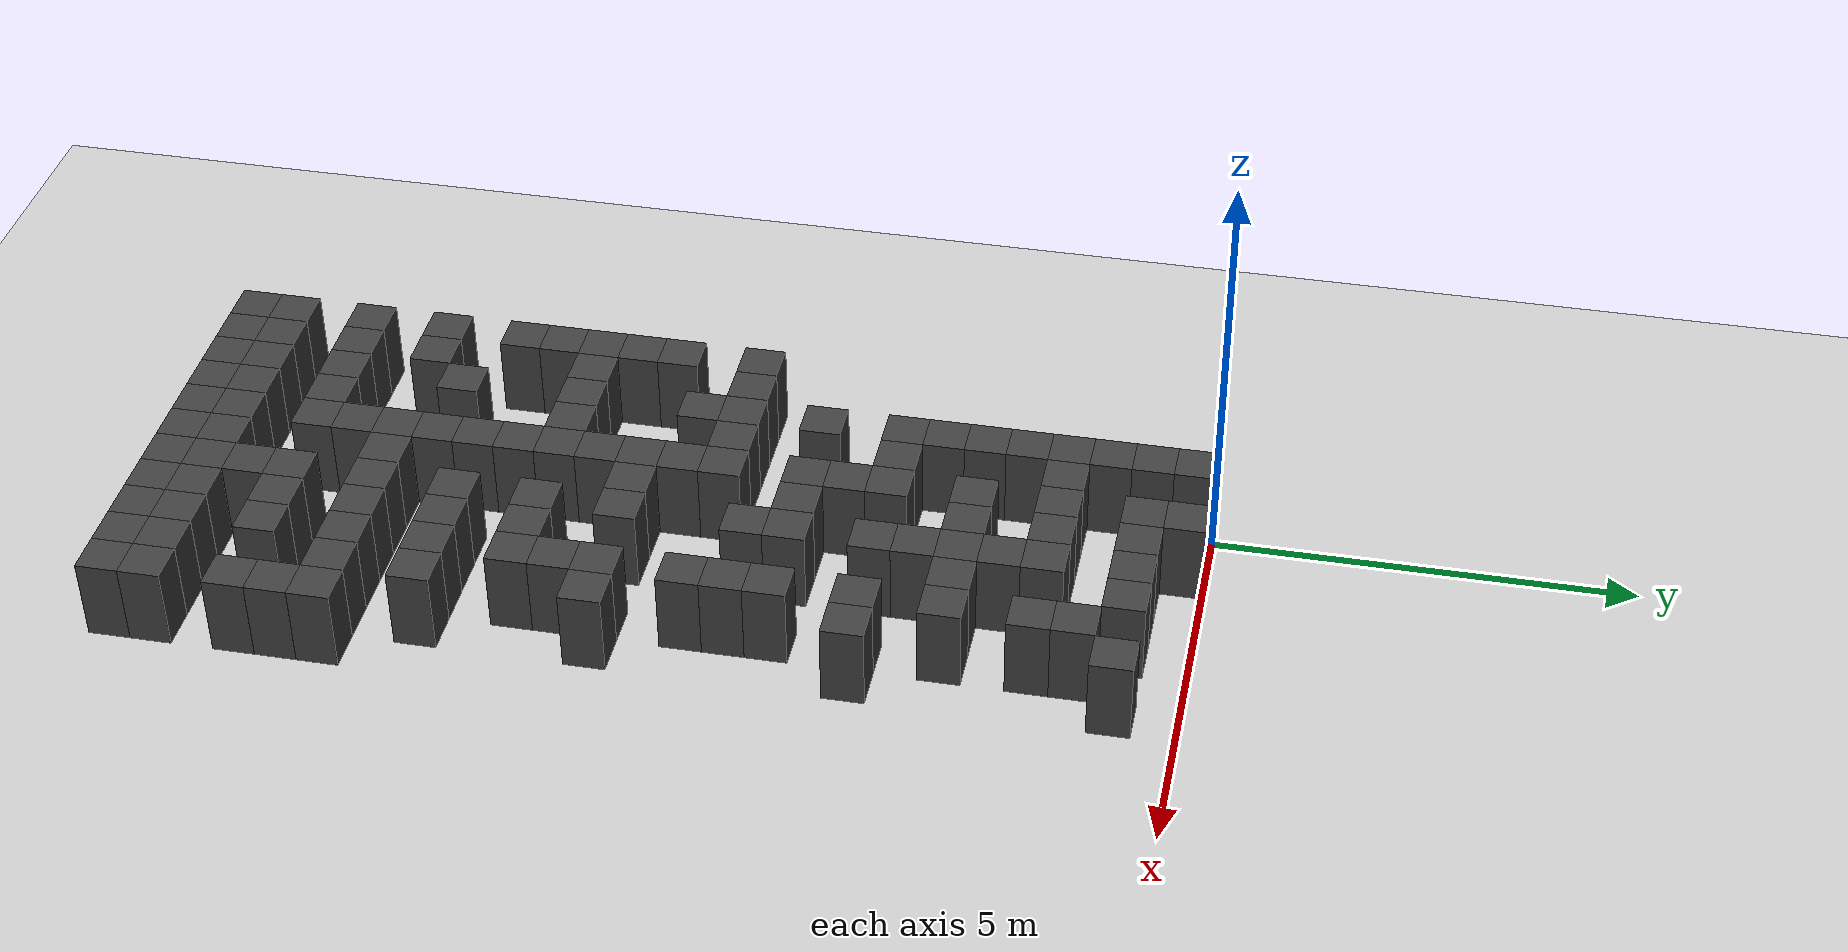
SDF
<sdf version="1.7">
 <world name="map_18347">
  <model name="ground_plane">
   <static>true</static>
   <link name="link">
    <collision name="collision">
     <geometry><plane><normal>0 0 1</normal><size>200 200</size></plane></geometry>
    </collision>
    <visual name="visual">
     <geometry><plane><normal>0 0 1</normal><size>200 200</size></plane></geometry>
     <material><ambient>0.8 0.8 0.8 1</ambient><diffuse>0.8 0.8 0.8 1</diffuse></material>
    </visual>
   </link>
  </model>
  <model name="maze_environment">
   <static>true</static>
   <link name="wall_651">
    <pose>-0.250 -0.250 0.500 0 0 0</pose>
    <collision name="col"><geometry><box><size>0.5 0.5 1.0</size></box></geometry></collision>
    <visual name="vis">
     <geometry><box><size>0.5 0.5 1.0</size></box></geometry>
     <material><ambient>0.15 0.15 0.15 1</ambient><diffuse>0.25 0.25 0.25 1</diffuse></material>
    </visual>
   </link>
   <link name="wall_652">
    <pose>0.750 -0.250 0.500 0 0 0</pose>
    <collision name="col"><geometry><box><size>0.5 0.5 1.0</size></box></geometry></collision>
    <visual name="vis">
     <geometry><box><size>0.5 0.5 1.0</size></box></geometry>
     <material><ambient>0.15 0.15 0.15 1</ambient><diffuse>0.25 0.25 0.25 1</diffuse></material>
    </visual>
   </link>
   <link name="wall_675">
    <pose>-0.250 -0.750 0.500 0 0 0</pose>
    <collision name="col"><geometry><box><size>0.5 0.5 1.0</size></box></geometry></collision>
    <visual name="vis">
     <geometry><box><size>0.5 0.5 1.0</size></box></geometry>
     <material><ambient>0.15 0.15 0.15 1</ambient><diffuse>0.25 0.25 0.25 1</diffuse></material>
    </visual>
   </link>
   <link name="wall_676">
    <pose>0.750 -0.750 0.500 0 0 0</pose>
    <collision name="col"><geometry><box><size>0.5 0.5 1.0</size></box></geometry></collision>
    <visual name="vis">
     <geometry><box><size>0.5 0.5 1.0</size></box></geometry>
     <material><ambient>0.15 0.15 0.15 1</ambient><diffuse>0.25 0.25 0.25 1</diffuse></material>
    </visual>
   </link>
   <link name="wall_677">
    <pose>1.250 -0.750 0.500 0 0 0</pose>
    <collision name="col"><geometry><box><size>0.5 0.5 1.0</size></box></geometry></collision>
    <visual name="vis">
     <geometry><box><size>0.5 0.5 1.0</size></box></geometry>
     <material><ambient>0.15 0.15 0.15 1</ambient><diffuse>0.25 0.25 0.25 1</diffuse></material>
    </visual>
   </link>
   <link name="wall_678">
    <pose>1.750 -0.750 0.500 0 0 0</pose>
    <collision name="col"><geometry><box><size>0.5 0.5 1.0</size></box></geometry></collision>
    <visual name="vis">
     <geometry><box><size>0.5 0.5 1.0</size></box></geometry>
     <material><ambient>0.15 0.15 0.15 1</ambient><diffuse>0.25 0.25 0.25 1</diffuse></material>
    </visual>
   </link>
   <link name="wall_679">
    <pose>2.250 -0.750 0.500 0 0 0</pose>
    <collision name="col"><geometry><box><size>0.5 0.5 1.0</size></box></geometry></collision>
    <visual name="vis">
     <geometry><box><size>0.5 0.5 1.0</size></box></geometry>
     <material><ambient>0.15 0.15 0.15 1</ambient><diffuse>0.25 0.25 0.25 1</diffuse></material>
    </visual>
   </link>
   <link name="wall_680">
    <pose>3.250 -0.750 0.500 0 0 0</pose>
    <collision name="col"><geometry><box><size>0.5 0.5 1.0</size></box></geometry></collision>
    <visual name="vis">
     <geometry><box><size>0.5 0.5 1.0</size></box></geometry>
     <material><ambient>0.15 0.15 0.15 1</ambient><diffuse>0.25 0.25 0.25 1</diffuse></material>
    </visual>
   </link>
   <link name="wall_701">
    <pose>-0.250 -1.250 0.500 0 0 0</pose>
    <collision name="col"><geometry><box><size>0.5 0.5 1.0</size></box></geometry></collision>
    <visual name="vis">
     <geometry><box><size>0.5 0.5 1.0</size></box></geometry>
     <material><ambient>0.15 0.15 0.15 1</ambient><diffuse>0.25 0.25 0.25 1</diffuse></material>
    </visual>
   </link>
   <link name="wall_702">
    <pose>2.750 -1.250 0.500 0 0 0</pose>
    <collision name="col"><geometry><box><size>0.5 0.5 1.0</size></box></geometry></collision>
    <visual name="vis">
     <geometry><box><size>0.5 0.5 1.0</size></box></geometry>
     <material><ambient>0.15 0.15 0.15 1</ambient><diffuse>0.25 0.25 0.25 1</diffuse></material>
    </visual>
   </link>
   <link name="wall_725">
    <pose>-0.250 -1.750 0.500 0 0 0</pose>
    <collision name="col"><geometry><box><size>0.5 0.5 1.0</size></box></geometry></collision>
    <visual name="vis">
     <geometry><box><size>0.5 0.5 1.0</size></box></geometry>
     <material><ambient>0.15 0.15 0.15 1</ambient><diffuse>0.25 0.25 0.25 1</diffuse></material>
    </visual>
   </link>
   <link name="wall_726">
    <pose>0.250 -1.750 0.500 0 0 0</pose>
    <collision name="col"><geometry><box><size>0.5 0.5 1.0</size></box></geometry></collision>
    <visual name="vis">
     <geometry><box><size>0.5 0.5 1.0</size></box></geometry>
     <material><ambient>0.15 0.15 0.15 1</ambient><diffuse>0.25 0.25 0.25 1</diffuse></material>
    </visual>
   </link>
   <link name="wall_727">
    <pose>0.750 -1.750 0.500 0 0 0</pose>
    <collision name="col"><geometry><box><size>0.5 0.5 1.0</size></box></geometry></collision>
    <visual name="vis">
     <geometry><box><size>0.5 0.5 1.0</size></box></geometry>
     <material><ambient>0.15 0.15 0.15 1</ambient><diffuse>0.25 0.25 0.25 1</diffuse></material>
    </visual>
   </link>
   <link name="wall_728">
    <pose>1.250 -1.750 0.500 0 0 0</pose>
    <collision name="col"><geometry><box><size>0.5 0.5 1.0</size></box></geometry></collision>
    <visual name="vis">
     <geometry><box><size>0.5 0.5 1.0</size></box></geometry>
     <material><ambient>0.15 0.15 0.15 1</ambient><diffuse>0.25 0.25 0.25 1</diffuse></material>
    </visual>
   </link>
   <link name="wall_729">
    <pose>1.750 -1.750 0.500 0 0 0</pose>
    <collision name="col"><geometry><box><size>0.5 0.5 1.0</size></box></geometry></collision>
    <visual name="vis">
     <geometry><box><size>0.5 0.5 1.0</size></box></geometry>
     <material><ambient>0.15 0.15 0.15 1</ambient><diffuse>0.25 0.25 0.25 1</diffuse></material>
    </visual>
   </link>
   <link name="wall_730">
    <pose>2.750 -1.750 0.500 0 0 0</pose>
    <collision name="col"><geometry><box><size>0.5 0.5 1.0</size></box></geometry></collision>
    <visual name="vis">
     <geometry><box><size>0.5 0.5 1.0</size></box></geometry>
     <material><ambient>0.15 0.15 0.15 1</ambient><diffuse>0.25 0.25 0.25 1</diffuse></material>
    </visual>
   </link>
   <link name="wall_747">
    <pose>-0.250 -2.250 0.500 0 0 0</pose>
    <collision name="col"><geometry><box><size>0.5 0.5 1.0</size></box></geometry></collision>
    <visual name="vis">
     <geometry><box><size>0.5 0.5 1.0</size></box></geometry>
     <material><ambient>0.15 0.15 0.15 1</ambient><diffuse>0.25 0.25 0.25 1</diffuse></material>
    </visual>
   </link>
   <link name="wall_748">
    <pose>1.750 -2.250 0.500 0 0 0</pose>
    <collision name="col"><geometry><box><size>0.5 0.5 1.0</size></box></geometry></collision>
    <visual name="vis">
     <geometry><box><size>0.5 0.5 1.0</size></box></geometry>
     <material><ambient>0.15 0.15 0.15 1</ambient><diffuse>0.25 0.25 0.25 1</diffuse></material>
    </visual>
   </link>
   <link name="wall_770">
    <pose>-0.250 -2.750 0.500 0 0 0</pose>
    <collision name="col"><geometry><box><size>0.5 0.5 1.0</size></box></geometry></collision>
    <visual name="vis">
     <geometry><box><size>0.5 0.5 1.0</size></box></geometry>
     <material><ambient>0.15 0.15 0.15 1</ambient><diffuse>0.25 0.25 0.25 1</diffuse></material>
    </visual>
   </link>
   <link name="wall_771">
    <pose>0.750 -2.750 0.500 0 0 0</pose>
    <collision name="col"><geometry><box><size>0.5 0.5 1.0</size></box></geometry></collision>
    <visual name="vis">
     <geometry><box><size>0.5 0.5 1.0</size></box></geometry>
     <material><ambient>0.15 0.15 0.15 1</ambient><diffuse>0.25 0.25 0.25 1</diffuse></material>
    </visual>
   </link>
   <link name="wall_772">
    <pose>1.250 -2.750 0.500 0 0 0</pose>
    <collision name="col"><geometry><box><size>0.5 0.5 1.0</size></box></geometry></collision>
    <visual name="vis">
     <geometry><box><size>0.5 0.5 1.0</size></box></geometry>
     <material><ambient>0.15 0.15 0.15 1</ambient><diffuse>0.25 0.25 0.25 1</diffuse></material>
    </visual>
   </link>
   <link name="wall_773">
    <pose>1.750 -2.750 0.500 0 0 0</pose>
    <collision name="col"><geometry><box><size>0.5 0.5 1.0</size></box></geometry></collision>
    <visual name="vis">
     <geometry><box><size>0.5 0.5 1.0</size></box></geometry>
     <material><ambient>0.15 0.15 0.15 1</ambient><diffuse>0.25 0.25 0.25 1</diffuse></material>
    </visual>
   </link>
   <link name="wall_774">
    <pose>2.250 -2.750 0.500 0 0 0</pose>
    <collision name="col"><geometry><box><size>0.5 0.5 1.0</size></box></geometry></collision>
    <visual name="vis">
     <geometry><box><size>0.5 0.5 1.0</size></box></geometry>
     <material><ambient>0.15 0.15 0.15 1</ambient><diffuse>0.25 0.25 0.25 1</diffuse></material>
    </visual>
   </link>
   <link name="wall_775">
    <pose>2.750 -2.750 0.500 0 0 0</pose>
    <collision name="col"><geometry><box><size>0.5 0.5 1.0</size></box></geometry></collision>
    <visual name="vis">
     <geometry><box><size>0.5 0.5 1.0</size></box></geometry>
     <material><ambient>0.15 0.15 0.15 1</ambient><diffuse>0.25 0.25 0.25 1</diffuse></material>
    </visual>
   </link>
   <link name="wall_794">
    <pose>-0.250 -3.250 0.500 0 0 0</pose>
    <collision name="col"><geometry><box><size>0.5 0.5 1.0</size></box></geometry></collision>
    <visual name="vis">
     <geometry><box><size>0.5 0.5 1.0</size></box></geometry>
     <material><ambient>0.15 0.15 0.15 1</ambient><diffuse>0.25 0.25 0.25 1</diffuse></material>
    </visual>
   </link>
   <link name="wall_795">
    <pose>1.750 -3.250 0.500 0 0 0</pose>
    <collision name="col"><geometry><box><size>0.5 0.5 1.0</size></box></geometry></collision>
    <visual name="vis">
     <geometry><box><size>0.5 0.5 1.0</size></box></geometry>
     <material><ambient>0.15 0.15 0.15 1</ambient><diffuse>0.25 0.25 0.25 1</diffuse></material>
    </visual>
   </link>
   <link name="wall_822">
    <pose>-0.250 -3.750 0.500 0 0 0</pose>
    <collision name="col"><geometry><box><size>0.5 0.5 1.0</size></box></geometry></collision>
    <visual name="vis">
     <geometry><box><size>0.5 0.5 1.0</size></box></geometry>
     <material><ambient>0.15 0.15 0.15 1</ambient><diffuse>0.25 0.25 0.25 1</diffuse></material>
    </visual>
   </link>
   <link name="wall_823">
    <pose>0.250 -3.750 0.500 0 0 0</pose>
    <collision name="col"><geometry><box><size>0.5 0.5 1.0</size></box></geometry></collision>
    <visual name="vis">
     <geometry><box><size>0.5 0.5 1.0</size></box></geometry>
     <material><ambient>0.15 0.15 0.15 1</ambient><diffuse>0.25 0.25 0.25 1</diffuse></material>
    </visual>
   </link>
   <link name="wall_824">
    <pose>0.750 -3.750 0.500 0 0 0</pose>
    <collision name="col"><geometry><box><size>0.5 0.5 1.0</size></box></geometry></collision>
    <visual name="vis">
     <geometry><box><size>0.5 0.5 1.0</size></box></geometry>
     <material><ambient>0.15 0.15 0.15 1</ambient><diffuse>0.25 0.25 0.25 1</diffuse></material>
    </visual>
   </link>
   <link name="wall_825">
    <pose>1.750 -3.750 0.500 0 0 0</pose>
    <collision name="col"><geometry><box><size>0.5 0.5 1.0</size></box></geometry></collision>
    <visual name="vis">
     <geometry><box><size>0.5 0.5 1.0</size></box></geometry>
     <material><ambient>0.15 0.15 0.15 1</ambient><diffuse>0.25 0.25 0.25 1</diffuse></material>
    </visual>
   </link>
   <link name="wall_826">
    <pose>2.750 -3.750 0.500 0 0 0</pose>
    <collision name="col"><geometry><box><size>0.5 0.5 1.0</size></box></geometry></collision>
    <visual name="vis">
     <geometry><box><size>0.5 0.5 1.0</size></box></geometry>
     <material><ambient>0.15 0.15 0.15 1</ambient><diffuse>0.25 0.25 0.25 1</diffuse></material>
    </visual>
   </link>
   <link name="wall_827">
    <pose>3.250 -3.750 0.500 0 0 0</pose>
    <collision name="col"><geometry><box><size>0.5 0.5 1.0</size></box></geometry></collision>
    <visual name="vis">
     <geometry><box><size>0.5 0.5 1.0</size></box></geometry>
     <material><ambient>0.15 0.15 0.15 1</ambient><diffuse>0.25 0.25 0.25 1</diffuse></material>
    </visual>
   </link>
   <link name="wall_846">
    <pose>0.750 -4.250 0.500 0 0 0</pose>
    <collision name="col"><geometry><box><size>0.5 0.5 1.0</size></box></geometry></collision>
    <visual name="vis">
     <geometry><box><size>0.5 0.5 1.0</size></box></geometry>
     <material><ambient>0.15 0.15 0.15 1</ambient><diffuse>0.25 0.25 0.25 1</diffuse></material>
    </visual>
   </link>
   <link name="wall_872">
    <pose>-0.250 -4.750 0.500 0 0 0</pose>
    <collision name="col"><geometry><box><size>0.5 0.5 1.0</size></box></geometry></collision>
    <visual name="vis">
     <geometry><box><size>0.5 0.5 1.0</size></box></geometry>
     <material><ambient>0.15 0.15 0.15 1</ambient><diffuse>0.25 0.25 0.25 1</diffuse></material>
    </visual>
   </link>
   <link name="wall_873">
    <pose>0.750 -4.750 0.500 0 0 0</pose>
    <collision name="col"><geometry><box><size>0.5 0.5 1.0</size></box></geometry></collision>
    <visual name="vis">
     <geometry><box><size>0.5 0.5 1.0</size></box></geometry>
     <material><ambient>0.15 0.15 0.15 1</ambient><diffuse>0.25 0.25 0.25 1</diffuse></material>
    </visual>
   </link>
   <link name="wall_874">
    <pose>1.250 -4.750 0.500 0 0 0</pose>
    <collision name="col"><geometry><box><size>0.5 0.5 1.0</size></box></geometry></collision>
    <visual name="vis">
     <geometry><box><size>0.5 0.5 1.0</size></box></geometry>
     <material><ambient>0.15 0.15 0.15 1</ambient><diffuse>0.25 0.25 0.25 1</diffuse></material>
    </visual>
   </link>
   <link name="wall_875">
    <pose>1.750 -4.750 0.500 0 0 0</pose>
    <collision name="col"><geometry><box><size>0.5 0.5 1.0</size></box></geometry></collision>
    <visual name="vis">
     <geometry><box><size>0.5 0.5 1.0</size></box></geometry>
     <material><ambient>0.15 0.15 0.15 1</ambient><diffuse>0.25 0.25 0.25 1</diffuse></material>
    </visual>
   </link>
   <link name="wall_876">
    <pose>2.750 -4.750 0.500 0 0 0</pose>
    <collision name="col"><geometry><box><size>0.5 0.5 1.0</size></box></geometry></collision>
    <visual name="vis">
     <geometry><box><size>0.5 0.5 1.0</size></box></geometry>
     <material><ambient>0.15 0.15 0.15 1</ambient><diffuse>0.25 0.25 0.25 1</diffuse></material>
    </visual>
   </link>
   <link name="wall_897">
    <pose>1.750 -5.250 0.500 0 0 0</pose>
    <collision name="col"><geometry><box><size>0.5 0.5 1.0</size></box></geometry></collision>
    <visual name="vis">
     <geometry><box><size>0.5 0.5 1.0</size></box></geometry>
     <material><ambient>0.15 0.15 0.15 1</ambient><diffuse>0.25 0.25 0.25 1</diffuse></material>
    </visual>
   </link>
   <link name="wall_898">
    <pose>2.750 -5.250 0.500 0 0 0</pose>
    <collision name="col"><geometry><box><size>0.5 0.5 1.0</size></box></geometry></collision>
    <visual name="vis">
     <geometry><box><size>0.5 0.5 1.0</size></box></geometry>
     <material><ambient>0.15 0.15 0.15 1</ambient><diffuse>0.25 0.25 0.25 1</diffuse></material>
    </visual>
   </link>
   <link name="wall_918">
    <pose>-1.250 -5.750 0.500 0 0 0</pose>
    <collision name="col"><geometry><box><size>0.5 0.5 1.0</size></box></geometry></collision>
    <visual name="vis">
     <geometry><box><size>0.5 0.5 1.0</size></box></geometry>
     <material><ambient>0.15 0.15 0.15 1</ambient><diffuse>0.25 0.25 0.25 1</diffuse></material>
    </visual>
   </link>
   <link name="wall_919">
    <pose>-0.750 -5.750 0.500 0 0 0</pose>
    <collision name="col"><geometry><box><size>0.5 0.5 1.0</size></box></geometry></collision>
    <visual name="vis">
     <geometry><box><size>0.5 0.5 1.0</size></box></geometry>
     <material><ambient>0.15 0.15 0.15 1</ambient><diffuse>0.25 0.25 0.25 1</diffuse></material>
    </visual>
   </link>
   <link name="wall_920">
    <pose>-0.250 -5.750 0.500 0 0 0</pose>
    <collision name="col"><geometry><box><size>0.5 0.5 1.0</size></box></geometry></collision>
    <visual name="vis">
     <geometry><box><size>0.5 0.5 1.0</size></box></geometry>
     <material><ambient>0.15 0.15 0.15 1</ambient><diffuse>0.25 0.25 0.25 1</diffuse></material>
    </visual>
   </link>
   <link name="wall_921">
    <pose>0.250 -5.750 0.500 0 0 0</pose>
    <collision name="col"><geometry><box><size>0.5 0.5 1.0</size></box></geometry></collision>
    <visual name="vis">
     <geometry><box><size>0.5 0.5 1.0</size></box></geometry>
     <material><ambient>0.15 0.15 0.15 1</ambient><diffuse>0.25 0.25 0.25 1</diffuse></material>
    </visual>
   </link>
   <link name="wall_922">
    <pose>0.750 -5.750 0.500 0 0 0</pose>
    <collision name="col"><geometry><box><size>0.5 0.5 1.0</size></box></geometry></collision>
    <visual name="vis">
     <geometry><box><size>0.5 0.5 1.0</size></box></geometry>
     <material><ambient>0.15 0.15 0.15 1</ambient><diffuse>0.25 0.25 0.25 1</diffuse></material>
    </visual>
   </link>
   <link name="wall_923">
    <pose>2.750 -5.750 0.500 0 0 0</pose>
    <collision name="col"><geometry><box><size>0.5 0.5 1.0</size></box></geometry></collision>
    <visual name="vis">
     <geometry><box><size>0.5 0.5 1.0</size></box></geometry>
     <material><ambient>0.15 0.15 0.15 1</ambient><diffuse>0.25 0.25 0.25 1</diffuse></material>
    </visual>
   </link>
   <link name="wall_942">
    <pose>-0.250 -6.250 0.500 0 0 0</pose>
    <collision name="col"><geometry><box><size>0.5 0.5 1.0</size></box></geometry></collision>
    <visual name="vis">
     <geometry><box><size>0.5 0.5 1.0</size></box></geometry>
     <material><ambient>0.15 0.15 0.15 1</ambient><diffuse>0.25 0.25 0.25 1</diffuse></material>
    </visual>
   </link>
   <link name="wall_943">
    <pose>0.750 -6.250 0.500 0 0 0</pose>
    <collision name="col"><geometry><box><size>0.5 0.5 1.0</size></box></geometry></collision>
    <visual name="vis">
     <geometry><box><size>0.5 0.5 1.0</size></box></geometry>
     <material><ambient>0.15 0.15 0.15 1</ambient><diffuse>0.25 0.25 0.25 1</diffuse></material>
    </visual>
   </link>
   <link name="wall_968">
    <pose>-1.250 -6.750 0.500 0 0 0</pose>
    <collision name="col"><geometry><box><size>0.5 0.5 1.0</size></box></geometry></collision>
    <visual name="vis">
     <geometry><box><size>0.5 0.5 1.0</size></box></geometry>
     <material><ambient>0.15 0.15 0.15 1</ambient><diffuse>0.25 0.25 0.25 1</diffuse></material>
    </visual>
   </link>
   <link name="wall_969">
    <pose>0.750 -6.750 0.500 0 0 0</pose>
    <collision name="col"><geometry><box><size>0.5 0.5 1.0</size></box></geometry></collision>
    <visual name="vis">
     <geometry><box><size>0.5 0.5 1.0</size></box></geometry>
     <material><ambient>0.15 0.15 0.15 1</ambient><diffuse>0.25 0.25 0.25 1</diffuse></material>
    </visual>
   </link>
   <link name="wall_970">
    <pose>1.250 -6.750 0.500 0 0 0</pose>
    <collision name="col"><geometry><box><size>0.5 0.5 1.0</size></box></geometry></collision>
    <visual name="vis">
     <geometry><box><size>0.5 0.5 1.0</size></box></geometry>
     <material><ambient>0.15 0.15 0.15 1</ambient><diffuse>0.25 0.25 0.25 1</diffuse></material>
    </visual>
   </link>
   <link name="wall_971">
    <pose>1.750 -6.750 0.500 0 0 0</pose>
    <collision name="col"><geometry><box><size>0.5 0.5 1.0</size></box></geometry></collision>
    <visual name="vis">
     <geometry><box><size>0.5 0.5 1.0</size></box></geometry>
     <material><ambient>0.15 0.15 0.15 1</ambient><diffuse>0.25 0.25 0.25 1</diffuse></material>
    </visual>
   </link>
   <link name="wall_972">
    <pose>2.750 -6.750 0.500 0 0 0</pose>
    <collision name="col"><geometry><box><size>0.5 0.5 1.0</size></box></geometry></collision>
    <visual name="vis">
     <geometry><box><size>0.5 0.5 1.0</size></box></geometry>
     <material><ambient>0.15 0.15 0.15 1</ambient><diffuse>0.25 0.25 0.25 1</diffuse></material>
    </visual>
   </link>
   <link name="wall_973">
    <pose>3.250 -6.750 0.500 0 0 0</pose>
    <collision name="col"><geometry><box><size>0.5 0.5 1.0</size></box></geometry></collision>
    <visual name="vis">
     <geometry><box><size>0.5 0.5 1.0</size></box></geometry>
     <material><ambient>0.15 0.15 0.15 1</ambient><diffuse>0.25 0.25 0.25 1</diffuse></material>
    </visual>
   </link>
   <link name="wall_992">
    <pose>-1.250 -7.250 0.500 0 0 0</pose>
    <collision name="col"><geometry><box><size>0.5 0.5 1.0</size></box></geometry></collision>
    <visual name="vis">
     <geometry><box><size>0.5 0.5 1.0</size></box></geometry>
     <material><ambient>0.15 0.15 0.15 1</ambient><diffuse>0.25 0.25 0.25 1</diffuse></material>
    </visual>
   </link>
   <link name="wall_993">
    <pose>0.750 -7.250 0.500 0 0 0</pose>
    <collision name="col"><geometry><box><size>0.5 0.5 1.0</size></box></geometry></collision>
    <visual name="vis">
     <geometry><box><size>0.5 0.5 1.0</size></box></geometry>
     <material><ambient>0.15 0.15 0.15 1</ambient><diffuse>0.25 0.25 0.25 1</diffuse></material>
    </visual>
   </link>
   <link name="wall_994">
    <pose>2.750 -7.250 0.500 0 0 0</pose>
    <collision name="col"><geometry><box><size>0.5 0.5 1.0</size></box></geometry></collision>
    <visual name="vis">
     <geometry><box><size>0.5 0.5 1.0</size></box></geometry>
     <material><ambient>0.15 0.15 0.15 1</ambient><diffuse>0.25 0.25 0.25 1</diffuse></material>
    </visual>
   </link>
   <link name="wall_1015">
    <pose>-1.250 -7.750 0.500 0 0 0</pose>
    <collision name="col"><geometry><box><size>0.5 0.5 1.0</size></box></geometry></collision>
    <visual name="vis">
     <geometry><box><size>0.5 0.5 1.0</size></box></geometry>
     <material><ambient>0.15 0.15 0.15 1</ambient><diffuse>0.25 0.25 0.25 1</diffuse></material>
    </visual>
   </link>
   <link name="wall_1016">
    <pose>-0.750 -7.750 0.500 0 0 0</pose>
    <collision name="col"><geometry><box><size>0.5 0.5 1.0</size></box></geometry></collision>
    <visual name="vis">
     <geometry><box><size>0.5 0.5 1.0</size></box></geometry>
     <material><ambient>0.15 0.15 0.15 1</ambient><diffuse>0.25 0.25 0.25 1</diffuse></material>
    </visual>
   </link>
   <link name="wall_1017">
    <pose>-0.250 -7.750 0.500 0 0 0</pose>
    <collision name="col"><geometry><box><size>0.5 0.5 1.0</size></box></geometry></collision>
    <visual name="vis">
     <geometry><box><size>0.5 0.5 1.0</size></box></geometry>
     <material><ambient>0.15 0.15 0.15 1</ambient><diffuse>0.25 0.25 0.25 1</diffuse></material>
    </visual>
   </link>
   <link name="wall_1018">
    <pose>0.250 -7.750 0.500 0 0 0</pose>
    <collision name="col"><geometry><box><size>0.5 0.5 1.0</size></box></geometry></collision>
    <visual name="vis">
     <geometry><box><size>0.5 0.5 1.0</size></box></geometry>
     <material><ambient>0.15 0.15 0.15 1</ambient><diffuse>0.25 0.25 0.25 1</diffuse></material>
    </visual>
   </link>
   <link name="wall_1019">
    <pose>0.750 -7.750 0.500 0 0 0</pose>
    <collision name="col"><geometry><box><size>0.5 0.5 1.0</size></box></geometry></collision>
    <visual name="vis">
     <geometry><box><size>0.5 0.5 1.0</size></box></geometry>
     <material><ambient>0.15 0.15 0.15 1</ambient><diffuse>0.25 0.25 0.25 1</diffuse></material>
    </visual>
   </link>
   <link name="wall_1020">
    <pose>1.750 -7.750 0.500 0 0 0</pose>
    <collision name="col"><geometry><box><size>0.5 0.5 1.0</size></box></geometry></collision>
    <visual name="vis">
     <geometry><box><size>0.5 0.5 1.0</size></box></geometry>
     <material><ambient>0.15 0.15 0.15 1</ambient><diffuse>0.25 0.25 0.25 1</diffuse></material>
    </visual>
   </link>
   <link name="wall_1021">
    <pose>2.250 -7.750 0.500 0 0 0</pose>
    <collision name="col"><geometry><box><size>0.5 0.5 1.0</size></box></geometry></collision>
    <visual name="vis">
     <geometry><box><size>0.5 0.5 1.0</size></box></geometry>
     <material><ambient>0.15 0.15 0.15 1</ambient><diffuse>0.25 0.25 0.25 1</diffuse></material>
    </visual>
   </link>
   <link name="wall_1022">
    <pose>2.750 -7.750 0.500 0 0 0</pose>
    <collision name="col"><geometry><box><size>0.5 0.5 1.0</size></box></geometry></collision>
    <visual name="vis">
     <geometry><box><size>0.5 0.5 1.0</size></box></geometry>
     <material><ambient>0.15 0.15 0.15 1</ambient><diffuse>0.25 0.25 0.25 1</diffuse></material>
    </visual>
   </link>
   <link name="wall_1044">
    <pose>-1.250 -8.250 0.500 0 0 0</pose>
    <collision name="col"><geometry><box><size>0.5 0.5 1.0</size></box></geometry></collision>
    <visual name="vis">
     <geometry><box><size>0.5 0.5 1.0</size></box></geometry>
     <material><ambient>0.15 0.15 0.15 1</ambient><diffuse>0.25 0.25 0.25 1</diffuse></material>
    </visual>
   </link>
   <link name="wall_1045">
    <pose>0.750 -8.250 0.500 0 0 0</pose>
    <collision name="col"><geometry><box><size>0.5 0.5 1.0</size></box></geometry></collision>
    <visual name="vis">
     <geometry><box><size>0.5 0.5 1.0</size></box></geometry>
     <material><ambient>0.15 0.15 0.15 1</ambient><diffuse>0.25 0.25 0.25 1</diffuse></material>
    </visual>
   </link>
   <link name="wall_1068">
    <pose>-1.250 -8.750 0.500 0 0 0</pose>
    <collision name="col"><geometry><box><size>0.5 0.5 1.0</size></box></geometry></collision>
    <visual name="vis">
     <geometry><box><size>0.5 0.5 1.0</size></box></geometry>
     <material><ambient>0.15 0.15 0.15 1</ambient><diffuse>0.25 0.25 0.25 1</diffuse></material>
    </visual>
   </link>
   <link name="wall_1069">
    <pose>0.750 -8.750 0.500 0 0 0</pose>
    <collision name="col"><geometry><box><size>0.5 0.5 1.0</size></box></geometry></collision>
    <visual name="vis">
     <geometry><box><size>0.5 0.5 1.0</size></box></geometry>
     <material><ambient>0.15 0.15 0.15 1</ambient><diffuse>0.25 0.25 0.25 1</diffuse></material>
    </visual>
   </link>
   <link name="wall_1070">
    <pose>1.750 -8.750 0.500 0 0 0</pose>
    <collision name="col"><geometry><box><size>0.5 0.5 1.0</size></box></geometry></collision>
    <visual name="vis">
     <geometry><box><size>0.5 0.5 1.0</size></box></geometry>
     <material><ambient>0.15 0.15 0.15 1</ambient><diffuse>0.25 0.25 0.25 1</diffuse></material>
    </visual>
   </link>
   <link name="wall_1071">
    <pose>2.250 -8.750 0.500 0 0 0</pose>
    <collision name="col"><geometry><box><size>0.5 0.5 1.0</size></box></geometry></collision>
    <visual name="vis">
     <geometry><box><size>0.5 0.5 1.0</size></box></geometry>
     <material><ambient>0.15 0.15 0.15 1</ambient><diffuse>0.25 0.25 0.25 1</diffuse></material>
    </visual>
   </link>
   <link name="wall_1072">
    <pose>2.750 -8.750 0.500 0 0 0</pose>
    <collision name="col"><geometry><box><size>0.5 0.5 1.0</size></box></geometry></collision>
    <visual name="vis">
     <geometry><box><size>0.5 0.5 1.0</size></box></geometry>
     <material><ambient>0.15 0.15 0.15 1</ambient><diffuse>0.25 0.25 0.25 1</diffuse></material>
    </visual>
   </link>
   <link name="wall_1073">
    <pose>3.250 -8.750 0.500 0 0 0</pose>
    <collision name="col"><geometry><box><size>0.5 0.5 1.0</size></box></geometry></collision>
    <visual name="vis">
     <geometry><box><size>0.5 0.5 1.0</size></box></geometry>
     <material><ambient>0.15 0.15 0.15 1</ambient><diffuse>0.25 0.25 0.25 1</diffuse></material>
    </visual>
   </link>
   <link name="wall_1093">
    <pose>-0.250 -9.250 0.500 0 0 0</pose>
    <collision name="col"><geometry><box><size>0.5 0.5 1.0</size></box></geometry></collision>
    <visual name="vis">
     <geometry><box><size>0.5 0.5 1.0</size></box></geometry>
     <material><ambient>0.15 0.15 0.15 1</ambient><diffuse>0.25 0.25 0.25 1</diffuse></material>
    </visual>
   </link>
   <link name="wall_1094">
    <pose>0.750 -9.250 0.500 0 0 0</pose>
    <collision name="col"><geometry><box><size>0.5 0.5 1.0</size></box></geometry></collision>
    <visual name="vis">
     <geometry><box><size>0.5 0.5 1.0</size></box></geometry>
     <material><ambient>0.15 0.15 0.15 1</ambient><diffuse>0.25 0.25 0.25 1</diffuse></material>
    </visual>
   </link>
   <link name="wall_1119">
    <pose>-1.250 -9.750 0.500 0 0 0</pose>
    <collision name="col"><geometry><box><size>0.5 0.5 1.0</size></box></geometry></collision>
    <visual name="vis">
     <geometry><box><size>0.5 0.5 1.0</size></box></geometry>
     <material><ambient>0.15 0.15 0.15 1</ambient><diffuse>0.25 0.25 0.25 1</diffuse></material>
    </visual>
   </link>
   <link name="wall_1120">
    <pose>-0.750 -9.750 0.500 0 0 0</pose>
    <collision name="col"><geometry><box><size>0.5 0.5 1.0</size></box></geometry></collision>
    <visual name="vis">
     <geometry><box><size>0.5 0.5 1.0</size></box></geometry>
     <material><ambient>0.15 0.15 0.15 1</ambient><diffuse>0.25 0.25 0.25 1</diffuse></material>
    </visual>
   </link>
   <link name="wall_1121">
    <pose>0.750 -9.750 0.500 0 0 0</pose>
    <collision name="col"><geometry><box><size>0.5 0.5 1.0</size></box></geometry></collision>
    <visual name="vis">
     <geometry><box><size>0.5 0.5 1.0</size></box></geometry>
     <material><ambient>0.15 0.15 0.15 1</ambient><diffuse>0.25 0.25 0.25 1</diffuse></material>
    </visual>
   </link>
   <link name="wall_1122">
    <pose>1.250 -9.750 0.500 0 0 0</pose>
    <collision name="col"><geometry><box><size>0.5 0.5 1.0</size></box></geometry></collision>
    <visual name="vis">
     <geometry><box><size>0.5 0.5 1.0</size></box></geometry>
     <material><ambient>0.15 0.15 0.15 1</ambient><diffuse>0.25 0.25 0.25 1</diffuse></material>
    </visual>
   </link>
   <link name="wall_1123">
    <pose>1.750 -9.750 0.500 0 0 0</pose>
    <collision name="col"><geometry><box><size>0.5 0.5 1.0</size></box></geometry></collision>
    <visual name="vis">
     <geometry><box><size>0.5 0.5 1.0</size></box></geometry>
     <material><ambient>0.15 0.15 0.15 1</ambient><diffuse>0.25 0.25 0.25 1</diffuse></material>
    </visual>
   </link>
   <link name="wall_1124">
    <pose>2.250 -9.750 0.500 0 0 0</pose>
    <collision name="col"><geometry><box><size>0.5 0.5 1.0</size></box></geometry></collision>
    <visual name="vis">
     <geometry><box><size>0.5 0.5 1.0</size></box></geometry>
     <material><ambient>0.15 0.15 0.15 1</ambient><diffuse>0.25 0.25 0.25 1</diffuse></material>
    </visual>
   </link>
   <link name="wall_1125">
    <pose>2.750 -9.750 0.500 0 0 0</pose>
    <collision name="col"><geometry><box><size>0.5 0.5 1.0</size></box></geometry></collision>
    <visual name="vis">
     <geometry><box><size>0.5 0.5 1.0</size></box></geometry>
     <material><ambient>0.15 0.15 0.15 1</ambient><diffuse>0.25 0.25 0.25 1</diffuse></material>
    </visual>
   </link>
   <link name="wall_1126">
    <pose>3.250 -9.750 0.500 0 0 0</pose>
    <collision name="col"><geometry><box><size>0.5 0.5 1.0</size></box></geometry></collision>
    <visual name="vis">
     <geometry><box><size>0.5 0.5 1.0</size></box></geometry>
     <material><ambient>0.15 0.15 0.15 1</ambient><diffuse>0.25 0.25 0.25 1</diffuse></material>
    </visual>
   </link>
   <link name="wall_1127">
    <pose>3.750 -9.750 0.500 0 0 0</pose>
    <collision name="col"><geometry><box><size>0.5 0.5 1.0</size></box></geometry></collision>
    <visual name="vis">
     <geometry><box><size>0.5 0.5 1.0</size></box></geometry>
     <material><ambient>0.15 0.15 0.15 1</ambient><diffuse>0.25 0.25 0.25 1</diffuse></material>
    </visual>
   </link>
   <link name="wall_1145">
    <pose>0.750 -10.250 0.500 0 0 0</pose>
    <collision name="col"><geometry><box><size>0.5 0.5 1.0</size></box></geometry></collision>
    <visual name="vis">
     <geometry><box><size>0.5 0.5 1.0</size></box></geometry>
     <material><ambient>0.15 0.15 0.15 1</ambient><diffuse>0.25 0.25 0.25 1</diffuse></material>
    </visual>
   </link>
   <link name="wall_1146">
    <pose>3.750 -10.250 0.500 0 0 0</pose>
    <collision name="col"><geometry><box><size>0.5 0.5 1.0</size></box></geometry></collision>
    <visual name="vis">
     <geometry><box><size>0.5 0.5 1.0</size></box></geometry>
     <material><ambient>0.15 0.15 0.15 1</ambient><diffuse>0.25 0.25 0.25 1</diffuse></material>
    </visual>
   </link>
   <link name="wall_1165">
    <pose>-1.250 -10.750 0.500 0 0 0</pose>
    <collision name="col"><geometry><box><size>0.5 0.5 1.0</size></box></geometry></collision>
    <visual name="vis">
     <geometry><box><size>0.5 0.5 1.0</size></box></geometry>
     <material><ambient>0.15 0.15 0.15 1</ambient><diffuse>0.25 0.25 0.25 1</diffuse></material>
    </visual>
   </link>
   <link name="wall_1166">
    <pose>-0.750 -10.750 0.500 0 0 0</pose>
    <collision name="col"><geometry><box><size>0.5 0.5 1.0</size></box></geometry></collision>
    <visual name="vis">
     <geometry><box><size>0.5 0.5 1.0</size></box></geometry>
     <material><ambient>0.15 0.15 0.15 1</ambient><diffuse>0.25 0.25 0.25 1</diffuse></material>
    </visual>
   </link>
   <link name="wall_1167">
    <pose>-0.250 -10.750 0.500 0 0 0</pose>
    <collision name="col"><geometry><box><size>0.5 0.5 1.0</size></box></geometry></collision>
    <visual name="vis">
     <geometry><box><size>0.5 0.5 1.0</size></box></geometry>
     <material><ambient>0.15 0.15 0.15 1</ambient><diffuse>0.25 0.25 0.25 1</diffuse></material>
    </visual>
   </link>
   <link name="wall_1168">
    <pose>0.250 -10.750 0.500 0 0 0</pose>
    <collision name="col"><geometry><box><size>0.5 0.5 1.0</size></box></geometry></collision>
    <visual name="vis">
     <geometry><box><size>0.5 0.5 1.0</size></box></geometry>
     <material><ambient>0.15 0.15 0.15 1</ambient><diffuse>0.25 0.25 0.25 1</diffuse></material>
    </visual>
   </link>
   <link name="wall_1169">
    <pose>0.750 -10.750 0.500 0 0 0</pose>
    <collision name="col"><geometry><box><size>0.5 0.5 1.0</size></box></geometry></collision>
    <visual name="vis">
     <geometry><box><size>0.5 0.5 1.0</size></box></geometry>
     <material><ambient>0.15 0.15 0.15 1</ambient><diffuse>0.25 0.25 0.25 1</diffuse></material>
    </visual>
   </link>
   <link name="wall_1170">
    <pose>1.750 -10.750 0.500 0 0 0</pose>
    <collision name="col"><geometry><box><size>0.5 0.5 1.0</size></box></geometry></collision>
    <visual name="vis">
     <geometry><box><size>0.5 0.5 1.0</size></box></geometry>
     <material><ambient>0.15 0.15 0.15 1</ambient><diffuse>0.25 0.25 0.25 1</diffuse></material>
    </visual>
   </link>
   <link name="wall_1171">
    <pose>2.250 -10.750 0.500 0 0 0</pose>
    <collision name="col"><geometry><box><size>0.5 0.5 1.0</size></box></geometry></collision>
    <visual name="vis">
     <geometry><box><size>0.5 0.5 1.0</size></box></geometry>
     <material><ambient>0.15 0.15 0.15 1</ambient><diffuse>0.25 0.25 0.25 1</diffuse></material>
    </visual>
   </link>
   <link name="wall_1172">
    <pose>2.750 -10.750 0.500 0 0 0</pose>
    <collision name="col"><geometry><box><size>0.5 0.5 1.0</size></box></geometry></collision>
    <visual name="vis">
     <geometry><box><size>0.5 0.5 1.0</size></box></geometry>
     <material><ambient>0.15 0.15 0.15 1</ambient><diffuse>0.25 0.25 0.25 1</diffuse></material>
    </visual>
   </link>
   <link name="wall_1173">
    <pose>3.750 -10.750 0.500 0 0 0</pose>
    <collision name="col"><geometry><box><size>0.5 0.5 1.0</size></box></geometry></collision>
    <visual name="vis">
     <geometry><box><size>0.5 0.5 1.0</size></box></geometry>
     <material><ambient>0.15 0.15 0.15 1</ambient><diffuse>0.25 0.25 0.25 1</diffuse></material>
    </visual>
   </link>
   <link name="wall_1192">
    <pose>1.750 -11.250 0.500 0 0 0</pose>
    <collision name="col"><geometry><box><size>0.5 0.5 1.0</size></box></geometry></collision>
    <visual name="vis">
     <geometry><box><size>0.5 0.5 1.0</size></box></geometry>
     <material><ambient>0.15 0.15 0.15 1</ambient><diffuse>0.25 0.25 0.25 1</diffuse></material>
    </visual>
   </link>
   <link name="wall_1217">
    <pose>-1.250 -11.750 0.500 0 0 0</pose>
    <collision name="col"><geometry><box><size>0.5 0.5 1.0</size></box></geometry></collision>
    <visual name="vis">
     <geometry><box><size>0.5 0.5 1.0</size></box></geometry>
     <material><ambient>0.15 0.15 0.15 1</ambient><diffuse>0.25 0.25 0.25 1</diffuse></material>
    </visual>
   </link>
   <link name="wall_1218">
    <pose>-0.750 -11.750 0.500 0 0 0</pose>
    <collision name="col"><geometry><box><size>0.5 0.5 1.0</size></box></geometry></collision>
    <visual name="vis">
     <geometry><box><size>0.5 0.5 1.0</size></box></geometry>
     <material><ambient>0.15 0.15 0.15 1</ambient><diffuse>0.25 0.25 0.25 1</diffuse></material>
    </visual>
   </link>
   <link name="wall_1219">
    <pose>-0.250 -11.750 0.500 0 0 0</pose>
    <collision name="col"><geometry><box><size>0.5 0.5 1.0</size></box></geometry></collision>
    <visual name="vis">
     <geometry><box><size>0.5 0.5 1.0</size></box></geometry>
     <material><ambient>0.15 0.15 0.15 1</ambient><diffuse>0.25 0.25 0.25 1</diffuse></material>
    </visual>
   </link>
   <link name="wall_1220">
    <pose>0.250 -11.750 0.500 0 0 0</pose>
    <collision name="col"><geometry><box><size>0.5 0.5 1.0</size></box></geometry></collision>
    <visual name="vis">
     <geometry><box><size>0.5 0.5 1.0</size></box></geometry>
     <material><ambient>0.15 0.15 0.15 1</ambient><diffuse>0.25 0.25 0.25 1</diffuse></material>
    </visual>
   </link>
   <link name="wall_1221">
    <pose>0.750 -11.750 0.500 0 0 0</pose>
    <collision name="col"><geometry><box><size>0.5 0.5 1.0</size></box></geometry></collision>
    <visual name="vis">
     <geometry><box><size>0.5 0.5 1.0</size></box></geometry>
     <material><ambient>0.15 0.15 0.15 1</ambient><diffuse>0.25 0.25 0.25 1</diffuse></material>
    </visual>
   </link>
   <link name="wall_1222">
    <pose>1.250 -11.750 0.500 0 0 0</pose>
    <collision name="col"><geometry><box><size>0.5 0.5 1.0</size></box></geometry></collision>
    <visual name="vis">
     <geometry><box><size>0.5 0.5 1.0</size></box></geometry>
     <material><ambient>0.15 0.15 0.15 1</ambient><diffuse>0.25 0.25 0.25 1</diffuse></material>
    </visual>
   </link>
   <link name="wall_1223">
    <pose>1.750 -11.750 0.500 0 0 0</pose>
    <collision name="col"><geometry><box><size>0.5 0.5 1.0</size></box></geometry></collision>
    <visual name="vis">
     <geometry><box><size>0.5 0.5 1.0</size></box></geometry>
     <material><ambient>0.15 0.15 0.15 1</ambient><diffuse>0.25 0.25 0.25 1</diffuse></material>
    </visual>
   </link>
   <link name="wall_1224">
    <pose>2.250 -11.750 0.500 0 0 0</pose>
    <collision name="col"><geometry><box><size>0.5 0.5 1.0</size></box></geometry></collision>
    <visual name="vis">
     <geometry><box><size>0.5 0.5 1.0</size></box></geometry>
     <material><ambient>0.15 0.15 0.15 1</ambient><diffuse>0.25 0.25 0.25 1</diffuse></material>
    </visual>
   </link>
   <link name="wall_1225">
    <pose>2.750 -11.750 0.500 0 0 0</pose>
    <collision name="col"><geometry><box><size>0.5 0.5 1.0</size></box></geometry></collision>
    <visual name="vis">
     <geometry><box><size>0.5 0.5 1.0</size></box></geometry>
     <material><ambient>0.15 0.15 0.15 1</ambient><diffuse>0.25 0.25 0.25 1</diffuse></material>
    </visual>
   </link>
   <link name="wall_1226">
    <pose>3.250 -11.750 0.500 0 0 0</pose>
    <collision name="col"><geometry><box><size>0.5 0.5 1.0</size></box></geometry></collision>
    <visual name="vis">
     <geometry><box><size>0.5 0.5 1.0</size></box></geometry>
     <material><ambient>0.15 0.15 0.15 1</ambient><diffuse>0.25 0.25 0.25 1</diffuse></material>
    </visual>
   </link>
   <link name="wall_1227">
    <pose>3.750 -11.750 0.500 0 0 0</pose>
    <collision name="col"><geometry><box><size>0.5 0.5 1.0</size></box></geometry></collision>
    <visual name="vis">
     <geometry><box><size>0.5 0.5 1.0</size></box></geometry>
     <material><ambient>0.15 0.15 0.15 1</ambient><diffuse>0.25 0.25 0.25 1</diffuse></material>
    </visual>
   </link>
   <link name="wall_1265">
    <pose>-1.250 -12.250 0.500 0 0 0</pose>
    <collision name="col"><geometry><box><size>0.5 0.5 1.0</size></box></geometry></collision>
    <visual name="vis">
     <geometry><box><size>0.5 0.5 1.0</size></box></geometry>
     <material><ambient>0.15 0.15 0.15 1</ambient><diffuse>0.25 0.25 0.25 1</diffuse></material>
    </visual>
   </link>
   <link name="wall_1266">
    <pose>-0.750 -12.250 0.500 0 0 0</pose>
    <collision name="col"><geometry><box><size>0.5 0.5 1.0</size></box></geometry></collision>
    <visual name="vis">
     <geometry><box><size>0.5 0.5 1.0</size></box></geometry>
     <material><ambient>0.15 0.15 0.15 1</ambient><diffuse>0.25 0.25 0.25 1</diffuse></material>
    </visual>
   </link>
   <link name="wall_1267">
    <pose>-0.250 -12.250 0.500 0 0 0</pose>
    <collision name="col"><geometry><box><size>0.5 0.5 1.0</size></box></geometry></collision>
    <visual name="vis">
     <geometry><box><size>0.5 0.5 1.0</size></box></geometry>
     <material><ambient>0.15 0.15 0.15 1</ambient><diffuse>0.25 0.25 0.25 1</diffuse></material>
    </visual>
   </link>
   <link name="wall_1268">
    <pose>0.250 -12.250 0.500 0 0 0</pose>
    <collision name="col"><geometry><box><size>0.5 0.5 1.0</size></box></geometry></collision>
    <visual name="vis">
     <geometry><box><size>0.5 0.5 1.0</size></box></geometry>
     <material><ambient>0.15 0.15 0.15 1</ambient><diffuse>0.25 0.25 0.25 1</diffuse></material>
    </visual>
   </link>
   <link name="wall_1269">
    <pose>0.750 -12.250 0.500 0 0 0</pose>
    <collision name="col"><geometry><box><size>0.5 0.5 1.0</size></box></geometry></collision>
    <visual name="vis">
     <geometry><box><size>0.5 0.5 1.0</size></box></geometry>
     <material><ambient>0.15 0.15 0.15 1</ambient><diffuse>0.25 0.25 0.25 1</diffuse></material>
    </visual>
   </link>
   <link name="wall_1270">
    <pose>1.250 -12.250 0.500 0 0 0</pose>
    <collision name="col"><geometry><box><size>0.5 0.5 1.0</size></box></geometry></collision>
    <visual name="vis">
     <geometry><box><size>0.5 0.5 1.0</size></box></geometry>
     <material><ambient>0.15 0.15 0.15 1</ambient><diffuse>0.25 0.25 0.25 1</diffuse></material>
    </visual>
   </link>
   <link name="wall_1271">
    <pose>1.750 -12.250 0.500 0 0 0</pose>
    <collision name="col"><geometry><box><size>0.5 0.5 1.0</size></box></geometry></collision>
    <visual name="vis">
     <geometry><box><size>0.5 0.5 1.0</size></box></geometry>
     <material><ambient>0.15 0.15 0.15 1</ambient><diffuse>0.25 0.25 0.25 1</diffuse></material>
    </visual>
   </link>
   <link name="wall_1272">
    <pose>2.250 -12.250 0.500 0 0 0</pose>
    <collision name="col"><geometry><box><size>0.5 0.5 1.0</size></box></geometry></collision>
    <visual name="vis">
     <geometry><box><size>0.5 0.5 1.0</size></box></geometry>
     <material><ambient>0.15 0.15 0.15 1</ambient><diffuse>0.25 0.25 0.25 1</diffuse></material>
    </visual>
   </link>
   <link name="wall_1273">
    <pose>2.750 -12.250 0.500 0 0 0</pose>
    <collision name="col"><geometry><box><size>0.5 0.5 1.0</size></box></geometry></collision>
    <visual name="vis">
     <geometry><box><size>0.5 0.5 1.0</size></box></geometry>
     <material><ambient>0.15 0.15 0.15 1</ambient><diffuse>0.25 0.25 0.25 1</diffuse></material>
    </visual>
   </link>
   <link name="wall_1274">
    <pose>3.250 -12.250 0.500 0 0 0</pose>
    <collision name="col"><geometry><box><size>0.5 0.5 1.0</size></box></geometry></collision>
    <visual name="vis">
     <geometry><box><size>0.5 0.5 1.0</size></box></geometry>
     <material><ambient>0.15 0.15 0.15 1</ambient><diffuse>0.25 0.25 0.25 1</diffuse></material>
    </visual>
   </link>
   <link name="wall_1275">
    <pose>3.750 -12.250 0.500 0 0 0</pose>
    <collision name="col"><geometry><box><size>0.5 0.5 1.0</size></box></geometry></collision>
    <visual name="vis">
     <geometry><box><size>0.5 0.5 1.0</size></box></geometry>
     <material><ambient>0.15 0.15 0.15 1</ambient><diffuse>0.25 0.25 0.25 1</diffuse></material>
    </visual>
   </link>
  </model>
 </world>
</sdf>
